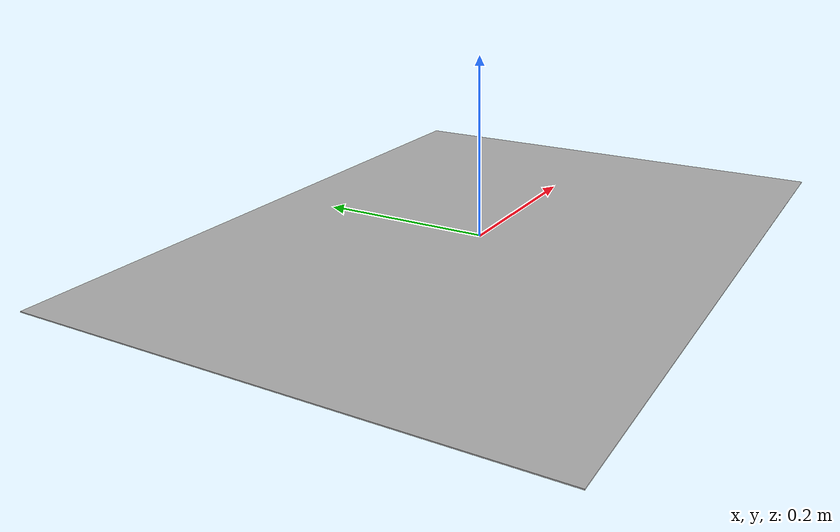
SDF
<?xml version='1.0'?>
<sdf version='1.5'>
  <model name='random'>

    <link name='marker'>
      <pose frame=''>0 0 0 0 0 0</pose>
      <visual name='visual'>
        <geometry>
          <box>
            <size>0.73928 0.55446 0.001</size>
          </box>
        </geometry>
        <material>
          <script>
            <uri>model://random/materials/scripts</uri>
            <uri>model://random/materials/textures</uri>
            <name>Random</name>
          </script>
        </material>
        <pose frame=''>0 0 0 0 -0 0</pose>
        <cast_shadows>false</cast_shadows>
        <transparency>false</transparency>
      </visual>
    </link>
    <static>false</static>
    <allow_auto_disable>true</allow_auto_disable>
  </model>
</sdf>
